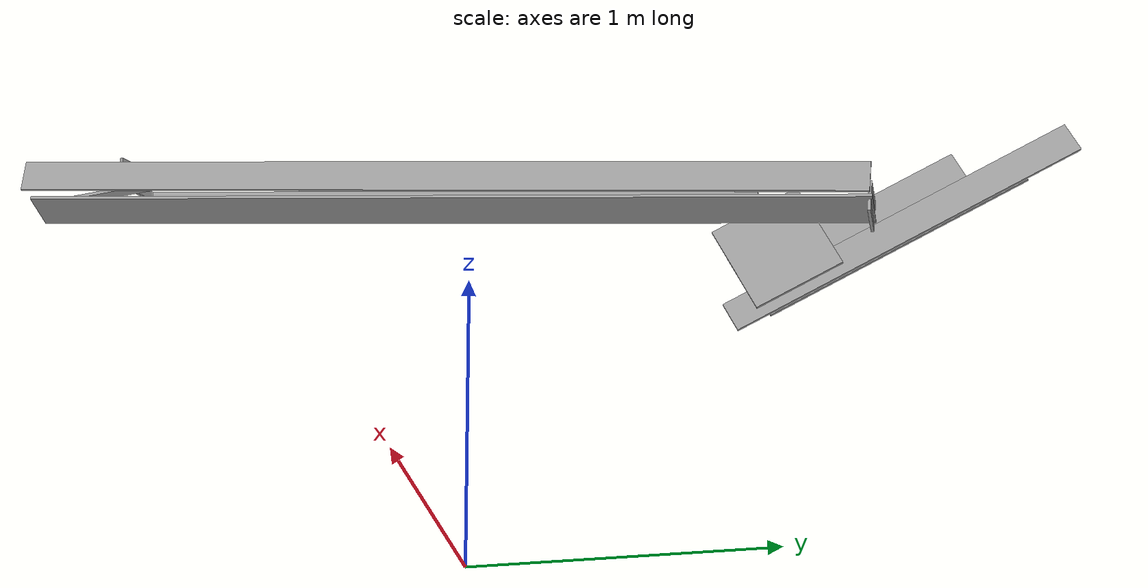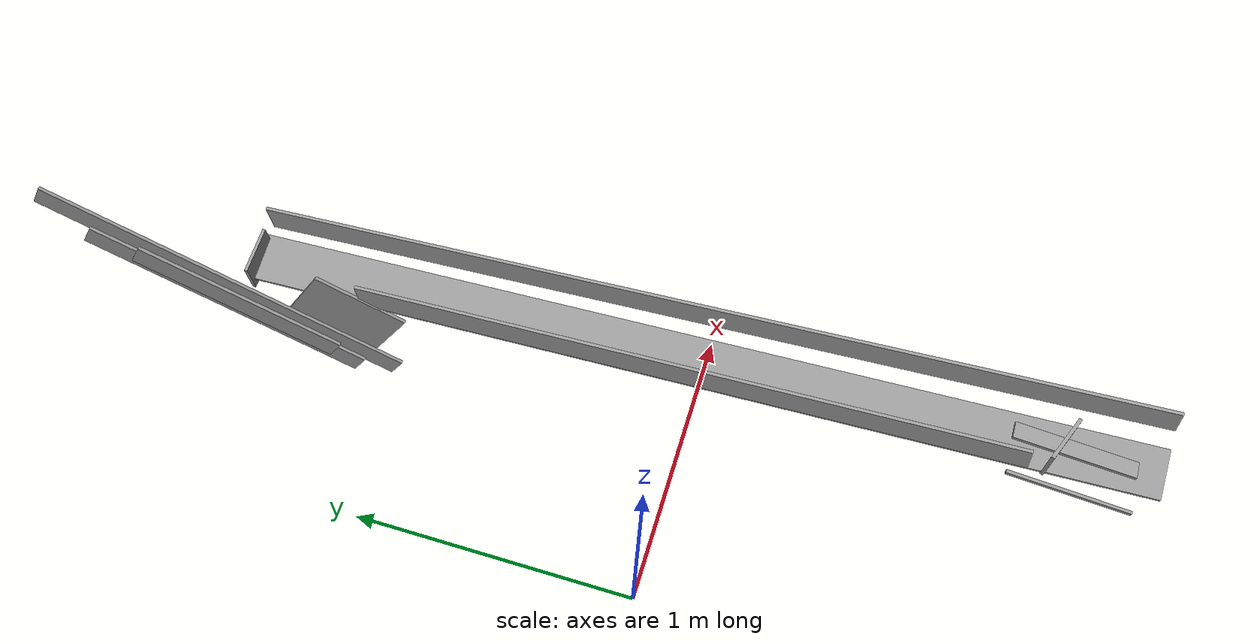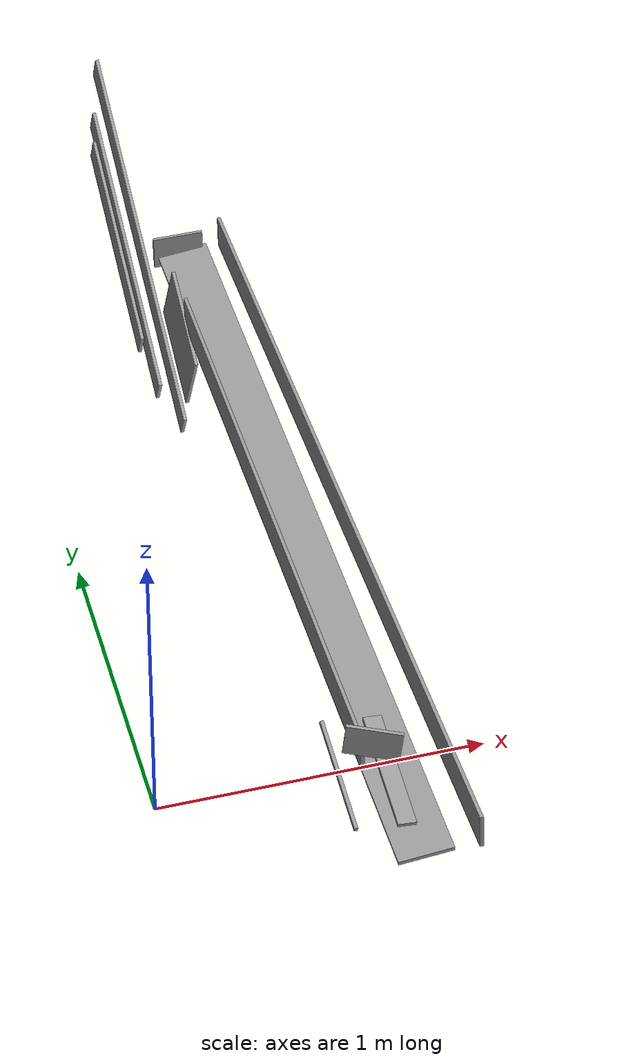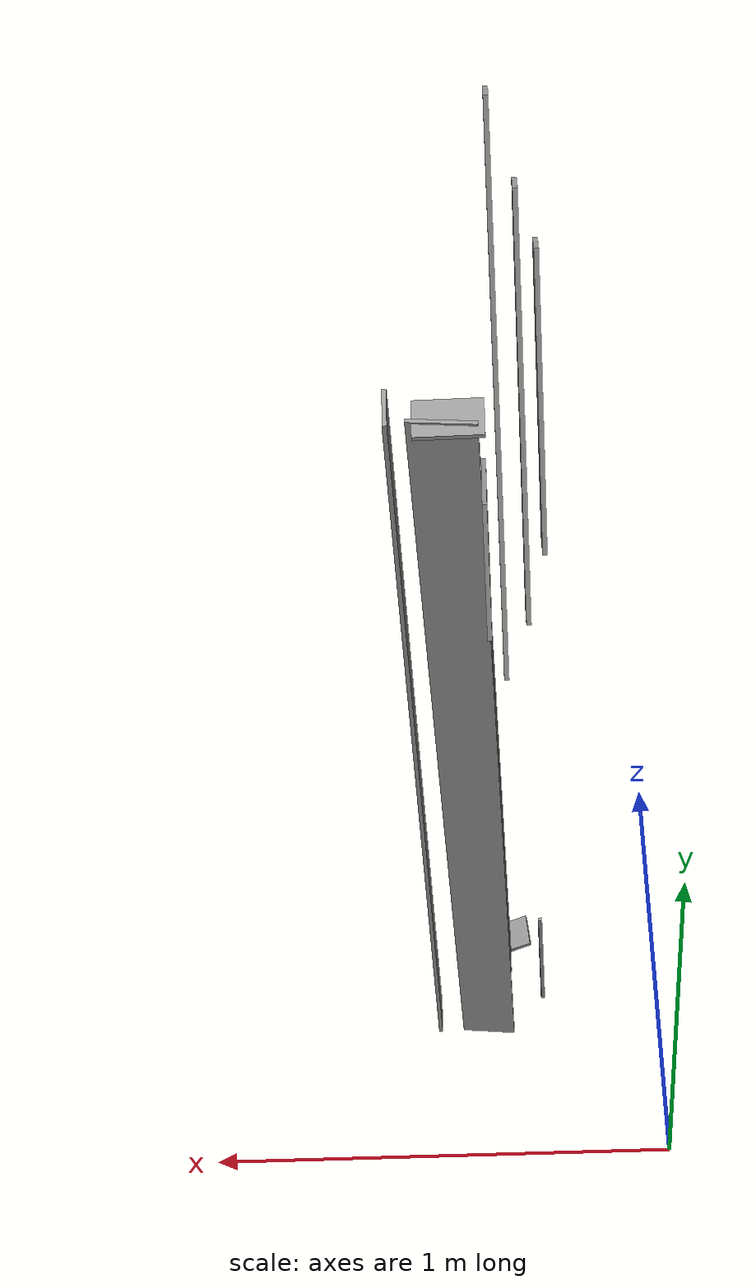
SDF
<?xml version="1.0" ?>
<sdf version="1.5">
  <model name="ramps">
    <pose>0 0 1.05 0 0 0</pose>
    <static>true</static>

    <link name="link">
      <collision name="collision_top_ramp1">
        <pose>0.245 -1.1 0.21 0.1 0.1 0</pose>
        <geometry>
          <box>
            <size>0.01 0.35 0.01</size>
          </box>
        </geometry>
      </collision>
      <visual name="visual_top_ramp1">
        <pose>0.245 -1.1 0.21 0.1 0.1 0</pose>
        <geometry>
          <box>
            <size>0.01 0.35 0.01</size>
          </box>
        </geometry>
        <material>
          <script>
            <uri>file://media/materials/scripts/gazebo.material</uri>
            <name>Gazebo/Grey</name>
          </script>
        </material>
      </visual>

      <collision name="collision_top_ramp">
        <pose>0.38 -1.1 0.19 0.1 0.1 0</pose>
        <geometry>
          <box>
            <size>0.05 0.35 0.01</size>
          </box>
        </geometry>
      </collision>
      <visual name="visual_top_ramp">
        <pose>0.38 -1.1 0.19 0.1 0.1 0</pose>
        <geometry>
          <box>
            <size>0.05 0.35 0.01</size>
          </box>
        </geometry>
        <material>
          <script>
            <uri>file://media/materials/scripts/gazebo.material</uri>
            <name>Gazebo/Grey</name>
          </script>
        </material>
      </visual>

      <collision name="collision_turn1_barrier">
        <pose>0.35 -1.05 0.25 .1 0 1.2</pose>
        <geometry>
          <box>
            <size>0.01 0.15 0.1</size>
          </box>
        </geometry>
      </collision>
      <visual name="visual_turn_barrier">
        <pose>0.35 -1.05 0.25 .1 0 1.2</pose>
        <geometry>
          <box>
            <size>0.01 0.15 0.1</size>
          </box>
        </geometry>
        <material>
          <script>
            <uri>file://media/materials/scripts/gazebo.material</uri>
            <name>Gazebo/Grey</name>
          </script>
        </material>
      </visual>

      <collision name="collision_ramp_back">
        <pose>0.42 0.0 -0.0 -0.1 -0.1 0</pose>
        <geometry>
          <box>
            <size>0.15 2.73 0.01</size>
          </box>
        </geometry>
      </collision>
      <visual name="visual_ramp_back">
        <pose>0.42 0.0 -0.0 -0.1 -0.1 0</pose>
        <geometry>
          <box>
            <size>0.15 2.73 0.01</size>
          </box>
        </geometry>
        <material>
          <script>
            <uri>file://media/materials/scripts/gazebo.material</uri>
            <name>Gazebo/Grey</name>
          </script>
        </material>
      </visual>
      <collision name="collision_ramp_back_wall">
        <pose>0.55 0 0.05 -0.1 0 0</pose>
        <geometry>
          <box>
            <size>0.01 2.73 0.1</size>
          </box>
        </geometry>
      </collision>
      <visual name="visual_ramp_back_wall">
        <pose>0.55 0 0.05 -0.1 0 0</pose>
        <geometry>
          <box>
            <size>0.01 2.73 0.1</size>
          </box>
        </geometry>
        <material>
          <script>
            <uri>file://media/materials/scripts/gazebo.material</uri>
            <name>Gazebo/Grey</name>
          </script>
        </material>
      </visual>

      <collision name="collision_ramp_back_wall2">
        <pose>0.348 0 0.05 -0.1 0 -0.01</pose>
        <geometry>
          <box>
            <size>0.01 2.0 0.1</size>
          </box>
        </geometry>
      </collision>
      <visual name="visual_ramp_back_wall2">
        <pose>0.348 0 0.05 -0.1 0 -0.01</pose>
        <geometry>
          <box>
            <size>0.01 2.0 0.1</size>
          </box>
        </geometry>
        <material>
          <script>
            <uri>file://media/materials/scripts/gazebo.material</uri>
            <name>Gazebo/Grey</name>
          </script>
        </material>
      </visual>

      <collision name="collision_turn2_barrier">
        <pose>0.42 1.35 -0.12 -0.1 0 0</pose>
        <geometry>
          <box>
            <size>0.15 0.01 0.1</size>
          </box>
        </geometry>
      </collision>
      <visual name="visual_turn2_barrier">
        <pose>0.42 1.35 -0.12 -0.1 0 0</pose>
        <geometry>
          <box>
            <size>0.15 0.01 0.1</size>
          </box>
        </geometry>
        <material>
          <script>
            <uri>file://media/materials/scripts/gazebo.material</uri>
            <name>Gazebo/Grey</name>
          </script>
        </material>
      </visual>

      <collision name="collision_feeder_guide">
        <pose>0.352 1.05 -0.2 0.45 0 0</pose>
        <geometry>
          <box>
            <size>0.01 0.3 0.3</size>
          </box>
        </geometry>
        <surface>
          <friction>
            <ode>
              <mu>0</mu>
              <mu2>0</mu2>
            </ode>
          </friction>
        </surface>
      </collision>
      <visual name="visual_feeder_guide">
        <pose>0.352 1.05 -0.2 0.45 0 0</pose>
        <geometry>
          <box>
            <size>0.01 0.3 0.3</size>
          </box>
        </geometry>
        <material>
          <script>
            <uri>file://media/materials/scripts/gazebo.material</uri>
            <name>Gazebo/Grey</name>
          </script>
        </material>
      </visual>

      <collision name="collision_feeder_turn">
        <pose>0.23 1.33 -0.05 0.45 0 0</pose>
        <geometry>
          <box>
            <size>0.01 0.65 0.1</size>
          </box>
        </geometry>
        <surface>
          <friction>
            <ode>
              <mu>0</mu>
              <mu2>0</mu2>
            </ode>
          </friction>
        </surface>

      </collision>
      <visual name="visual_feeder_turn">
        <pose>0.23 1.33 -0.05 0.45 0 0</pose>
        <geometry>
          <box>
            <size>0.01 0.65 0.1</size>
          </box>
        </geometry>
        <material>
          <script>
            <uri>file://media/materials/scripts/gazebo.material</uri>
            <name>Gazebo/Grey</name>
          </script>
        </material>
      </visual>

      <collision name="collision_feeder_wall">
        <pose>0.27 1.4 -0.15 0.45 0 0</pose>
        <geometry>
          <box>
            <size>0.01 0.905 0.1</size>
          </box>
        </geometry>
      </collision>
      <visual name="visual_feeder_wall">
        <pose>0.27 1.4 -0.15 0.45 0 0</pose>
        <geometry>
          <box>
            <size>0.01 0.905 0.1</size>
          </box>
        </geometry>
        <material>
          <script>
            <uri>file://media/materials/scripts/gazebo.material</uri>
            <name>Gazebo/Grey</name>
          </script>
        </material>
      </visual>

      <collision name="collision_feeder_wall2">
        <pose>0.32 1.435 -0.15 0.45 0 0</pose>
        <geometry>
          <box>
            <size>0.01 1.2 0.1</size>
          </box>
        </geometry>
      </collision>
      <visual name="visual_feeder_wall2">
        <pose>0.32 1.435 -0.15 0.45 0 0</pose>
        <geometry>
          <box>
            <size>0.01 1.2 0.1</size>
          </box>
        </geometry>
        <material>
          <script>
            <uri>file://media/materials/scripts/gazebo.material</uri>
            <name>Gazebo/Grey</name>
          </script>
        </material>
      </visual>
    </link>
  </model>

</sdf>
